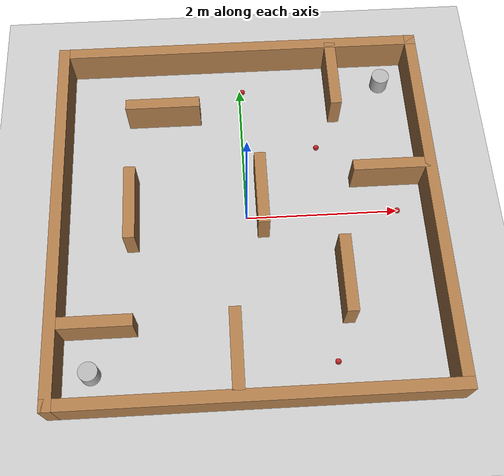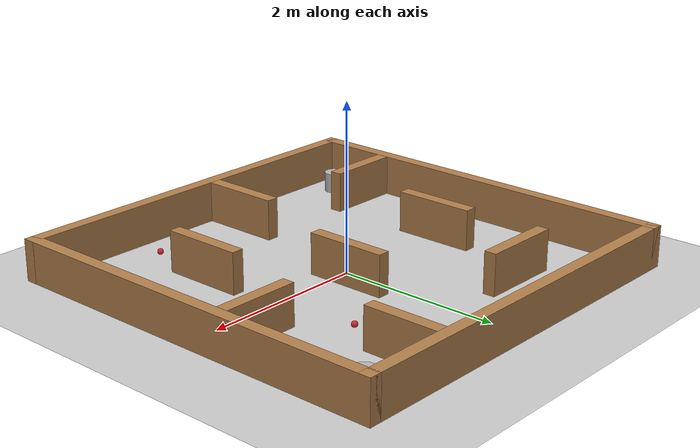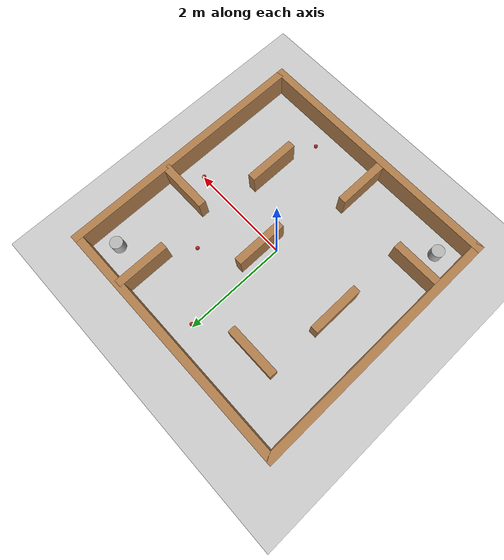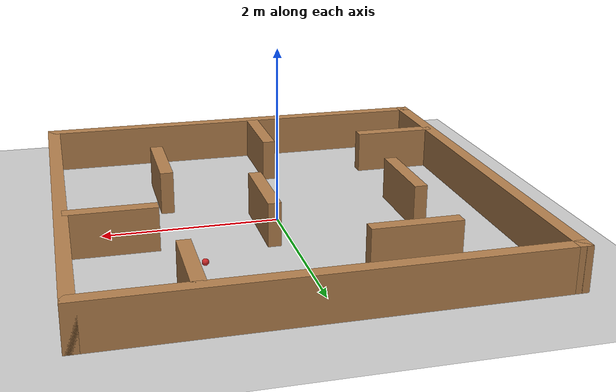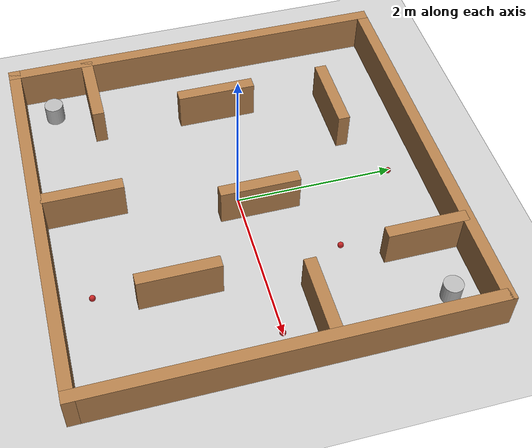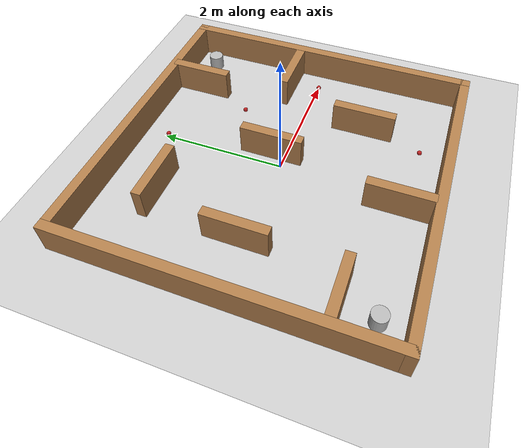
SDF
<sdf version="1.7">
 <world name="default">
  <light name="sun" type="directional">
   <pose>0 0 10 0 -0 0</pose>
   <diffuse>0.8 0.8 0.8 1</diffuse>
   <specular>0.1 0.1 0.1 1</specular>
   <attenuation>
    <range>1000</range>
    <constant>0.9</constant>
    <linear>0.01</linear>
    <quadratic>0.001</quadratic>
   </attenuation>
   <direction>-0.5 0.5 -1</direction>
   <spot><inner_angle>0</inner_angle><outer_angle>0</outer_angle><falloff>0</falloff></spot>
  </light>
  <model name="ground_plane">
   <static>1</static>
   <link name="link">
    <collision name="collision">
     <geometry><plane><normal>0 0 1</normal><size>100 100</size></plane></geometry>
     <surface><friction><ode><mu>100</mu><mu2>50</mu2></ode></friction></surface>
    </collision>
    <visual name="visual">
     <cast_shadows>0</cast_shadows>
     <geometry><plane><normal>0 0 1</normal><size>100 100</size></plane></geometry>
     <material>
      <script><uri>file://media/materials/scripts/gazebo.material</uri><name>Gazebo/Grey</name></script>
     </material>
    </visual>
   </link>
  </model>
  <physics name="default_physics" default="0" type="ode">
   <real_time_update_rate>1000</real_time_update_rate>
   <max_step_size>0.001</max_step_size>
   <real_time_factor>1</real_time_factor>
   <ode>
    <solver>
     <type>quick</type>
     <iters>150</iters>
     <precon_iters>0</precon_iters>
     <sor>1.4</sor>
     <use_dynamic_moi_rescaling>1</use_dynamic_moi_rescaling>
    </solver>
    <constraints>
     <cfm>1e-05</cfm>
     <erp>0.2</erp>
     <contact_max_correcting_vel>2000</contact_max_correcting_vel>
     <contact_surface_layer>0.01</contact_surface_layer>
    </constraints>
   </ode>
  </physics>
  <model name="turtlebot3_plaza">
   <link name="Wall_0">
    <collision name="Wall_0_Collision">
     <geometry><box><size>5 0.15 0.5</size></box></geometry>
     <pose>0 0 0.25 0 -0 0</pose>
    </collision>
    <visual name="Wall_0_Visual">
     <pose>0 0 0.25 0 -0 0</pose>
     <geometry><box><size>5 0.15 0.5</size></box></geometry>
     <material>
      <script><uri>file://media/materials/scripts/gazebo.material</uri><name>Gazebo/Wood</name></script>
      <ambient>1 1 1 1</ambient>
     </material>
    </visual>
    <pose>-2.425 0 0 0 -0 1.5708</pose>
   </link>
   <link name="Wall_11">
    <collision name="Wall_11_Collision">
     <geometry><box><size>1 0.15 0.5</size></box></geometry>
     <pose>0 0 0.25 0 -0 0</pose>
    </collision>
    <visual name="Wall_11_Visual">
     <pose>0 0 0.25 0 -0 0</pose>
     <geometry><box><size>1 0.15 0.5</size></box></geometry>
     <material>
      <script><uri>file://media/materials/scripts/gazebo.material</uri><name>Gazebo/Wood</name></script>
      <ambient>1 1 1 1</ambient>
     </material>
    </visual>
    <pose>-1.937 -1.467 0 0 -0 0</pose>
   </link>
   <link name="Wall_13">
    <collision name="Wall_13_Collision">
     <geometry><box><size>1 0.15 0.5</size></box></geometry>
     <pose>0 0 0.25 0 -0 0</pose>
    </collision>
    <visual name="Wall_13_Visual">
     <pose>0 0 0.25 0 -0 0</pose>
     <geometry><box><size>1 0.15 0.5</size></box></geometry>
     <material>
      <script><uri>file://media/materials/scripts/gazebo.material</uri><name>Gazebo/Wood</name></script>
      <ambient>1 1 1 1</ambient>
     </material>
    </visual>
    <pose>-0.22 -1.866 0 0 0 -1.5708</pose>
   </link>
   <link name="Wall_15">
    <collision name="Wall_15_Collision">
     <geometry><box><size>1 0.15 0.5</size></box></geometry>
     <pose>0 0 0.25 0 -0 0</pose>
    </collision>
    <visual name="Wall_15_Visual">
     <pose>0 0 0.25 0 -0 0</pose>
     <geometry><box><size>1 0.15 0.5</size></box></geometry>
     <material>
      <script><uri>file://media/materials/scripts/gazebo.material</uri><name>Gazebo/Wood</name></script>
      <ambient>1 1 1 1</ambient>
     </material>
    </visual>
    <pose>1.195 -1.002 0 0 -0 1.5708</pose>
   </link>
   <link name="Wall_17">
    <collision name="Wall_17_Collision">
     <geometry><box><size>1 0.15 0.5</size></box></geometry>
     <pose>0 0 0.25 0 -0 0</pose>
    </collision>
    <visual name="Wall_17_Visual">
     <pose>0 0 0.25 0 -0 0</pose>
     <geometry><box><size>1 0.15 0.5</size></box></geometry>
     <material>
      <script><uri>file://media/materials/scripts/gazebo.material</uri><name>Gazebo/Wood</name></script>
      <ambient>1 1 1 1</ambient>
     </material>
    </visual>
    <pose>1.288 1.93 0 0 0 -1.5708</pose>
   </link>
   <link name="Wall_19">
    <collision name="Wall_19_Collision">
     <geometry><box><size>1 0.15 0.5</size></box></geometry>
     <pose>0 0 0.25 0 -0 0</pose>
    </collision>
    <visual name="Wall_19_Visual">
     <pose>0 0 0.25 0 -0 0</pose>
     <geometry><box><size>1 0.15 0.5</size></box></geometry>
     <material>
      <script><uri>file://media/materials/scripts/gazebo.material</uri><name>Gazebo/Wood</name></script>
      <ambient>1 1 1 1</ambient>
     </material>
    </visual>
    <pose>1.91128 0.4632 0 0 -0 0</pose>
   </link>
   <link name="Wall_2">
    <collision name="Wall_2_Collision">
     <geometry><box><size>5 0.15 0.5</size></box></geometry>
     <pose>0 0 0.25 0 -0 0</pose>
    </collision>
    <visual name="Wall_2_Visual">
     <pose>0 0 0.25 0 -0 0</pose>
     <geometry><box><size>5 0.15 0.5</size></box></geometry>
     <material>
      <script><uri>file://media/materials/scripts/gazebo.material</uri><name>Gazebo/Wood</name></script>
      <ambient>1 1 1 1</ambient>
     </material>
    </visual>
    <pose>0 2.425 0 0 -0 0</pose>
   </link>
   <link name="Wall_21">
    <collision name="Wall_21_Collision">
     <geometry><box><size>1 0.15 0.5</size></box></geometry>
     <pose>0 0 0.25 0 -0 0</pose>
    </collision>
    <visual name="Wall_21_Visual">
     <pose>0 0 0.25 0 -0 0</pose>
     <geometry><box><size>1 0.15 0.5</size></box></geometry>
     <material>
      <script><uri>file://media/materials/scripts/gazebo.material</uri><name>Gazebo/Wood</name></script>
      <ambient>1 1 1 1</ambient>
     </material>
    </visual>
    <pose>0.204 0.215 0 0 0 -1.5708</pose>
   </link>
   <link name="Wall_3">
    <collision name="Wall_3_Collision">
     <geometry><box><size>5 0.15 0.5</size></box></geometry>
     <pose>0 0 0.25 0 -0 0</pose>
    </collision>
    <visual name="Wall_3_Visual">
     <pose>0 0 0.25 0 -0 0</pose>
     <geometry><box><size>5 0.15 0.5</size></box></geometry>
     <material>
      <script><uri>file://media/materials/scripts/gazebo.material</uri><name>Gazebo/Wood</name></script>
      <ambient>1 1 1 1</ambient>
     </material>
    </visual>
    <pose>2.425 0 0 0 0 -1.5708</pose>
   </link>
   <link name="Wall_4">
    <collision name="Wall_4_Collision">
     <geometry><box><size>5 0.15 0.5</size></box></geometry>
     <pose>0 0 0.25 0 -0 0</pose>
    </collision>
    <visual name="Wall_4_Visual">
     <pose>0 0 0.25 0 -0 0</pose>
     <geometry><box><size>5 0.15 0.5</size></box></geometry>
     <material>
      <script><uri>file://media/materials/scripts/gazebo.material</uri><name>Gazebo/Wood</name></script>
      <ambient>1 1 1 1</ambient>
     </material>
    </visual>
    <pose>0 -2.425 0 0 -0 3.14159</pose>
   </link>
   <link name="Wall_7">
    <collision name="Wall_7_Collision">
     <geometry><box><size>1 0.15 0.5</size></box></geometry>
     <pose>0 0 0.25 0 -0 0</pose>
    </collision>
    <visual name="Wall_7_Visual">
     <pose>0 0 0.25 0 -0 0</pose>
     <geometry><box><size>1 0.15 0.5</size></box></geometry>
     <material>
      <script><uri>file://media/materials/scripts/gazebo.material</uri><name>Gazebo/Wood</name></script>
      <ambient>1 1 1 1</ambient>
     </material>
    </visual>
    <pose>-1.064 1.548 0 0 -0 0</pose>
   </link>
   <link name="Wall_9">
    <collision name="Wall_9_Collision">
     <geometry><box><size>1 0.15 0.5</size></box></geometry>
     <pose>0 0 0.25 0 -0 0</pose>
    </collision>
    <visual name="Wall_9_Visual">
     <pose>0 0 0.25 0 -0 0</pose>
     <geometry><box><size>1 0.15 0.5</size></box></geometry>
     <material>
      <script><uri>file://media/materials/scripts/gazebo.material</uri><name>Gazebo/Wood</name></script>
      <ambient>1 1 1 1</ambient>
     </material>
    </visual>
    <pose>-1.502 0.092 0 0 0 -1.5708</pose>
   </link>
   <static>1</static>
  </model>
  <model name="obstacle_1">
   <pose>2 2 0.124999 -0 -0 -0</pose>
   <link name="link">
    <collision name="collision">
     <geometry><cylinder><radius>0.12</radius><length>0.25</length></cylinder></geometry>
    </collision>
    <visual name="visual">
     <geometry><cylinder><radius>0.12</radius><length>0.25</length></cylinder></geometry>
    </visual>
    <inertial>
     <inertia><ixx>1</ixx><ixy>0</ixy><ixz>0</ixz><iyy>1</iyy><iyz>0</iyz><izz>1</izz></inertia>
     <mass>1</mass>
    </inertial>
   </link>
  </model>
  <model name="obstacle_2">
   <pose>-2 -2 0.124999 -0 -0 -0</pose>
   <link name="link">
    <collision name="collision">
     <geometry><cylinder><radius>0.12</radius><length>0.25</length></cylinder></geometry>
    </collision>
    <visual name="visual">
     <geometry><cylinder><radius>0.12</radius><length>0.25</length></cylinder></geometry>
    </visual>
    <inertial>
     <inertia><ixx>1</ixx><ixy>0</ixy><ixz>0</ixz><iyy>1</iyy><iyz>0</iyz><izz>1</izz></inertia>
     <mass>1</mass>
    </inertial>
   </link>
   <plugin name="obstacle_2" filename="libobstacle_2.so"/>
  </model>
  <scene><ambient>0.4 0.4 0.4 1</ambient><background>0.7 0.7 0.7 1</background><shadows>1</shadows></scene>
  <gravity>0 0 -9.8</gravity>
  <magnetic_field>6e-06 2.3e-05 -4.2e-05</magnetic_field>
  <atmosphere type="adiabatic"/>
  <spherical_coordinates>
   <surface_model>EARTH_WGS84</surface_model>
   <latitude_deg>0</latitude_deg>
   <longitude_deg>0</longitude_deg>
   <elevation>0</elevation>
   <heading_deg>0</heading_deg>
  </spherical_coordinates>
  <model name="cricket_ball">
   <link name="link">
    <pose>0 0 0.0375 0 -0 0</pose>
    <inertial>
     <mass>0.1467</mass>
     <inertia>
      <ixx>8.25187e-05</ixx>
      <ixy>0</ixy>
      <ixz>0</ixz>
      <iyy>8.25187e-05</iyy>
      <iyz>0</iyz>
      <izz>8.25187e-05</izz>
     </inertia>
    </inertial>
    <collision name="collision">
     <geometry><sphere><radius>0.0375</radius></sphere></geometry>
     <surface>
      <contact>
       <poissons_ratio>0.347</poissons_ratio>
       <elastic_modulus>8.8e+09</elastic_modulus>
       <ode><kp>100000</kp><kd>100</kd><max_vel>100</max_vel><min_depth>0.001</min_depth></ode>
      </contact>
      <friction>
       <torsional>
        <coefficient>1</coefficient>
        <use_patch_radius>0</use_patch_radius>
        <surface_radius>0.01</surface_radius>
       </torsional>
      </friction>
     </surface>
    </collision>
    <visual name="visual">
     <geometry><sphere><radius>0.0375</radius></sphere></geometry>
     <material>
      <script><uri>file://media/materials/scripts/gazebo.material</uri><name>Gazebo/Red</name></script>
     </material>
    </visual>
    <velocity_decay><linear>0</linear><angular>0.005</angular></velocity_decay>
   </link>
   <pose>1.00849 -1.98944 -0.001014 0 -0 0</pose>
  </model>
  <model name="cricket_ball_0">
   <link name="link">
    <pose>0 0 0.0375 0 -0 0</pose>
    <inertial>
     <mass>0.1467</mass>
     <inertia>
      <ixx>8.25187e-05</ixx>
      <ixy>0</ixy>
      <ixz>0</ixz>
      <iyy>8.25187e-05</iyy>
      <iyz>0</iyz>
      <izz>8.25187e-05</izz>
     </inertia>
    </inertial>
    <collision name="collision">
     <geometry><sphere><radius>0.0375</radius></sphere></geometry>
     <surface>
      <contact>
       <poissons_ratio>0.347</poissons_ratio>
       <elastic_modulus>8.8e+09</elastic_modulus>
       <ode><kp>100000</kp><kd>100</kd><max_vel>100</max_vel><min_depth>0.001</min_depth></ode>
      </contact>
      <friction>
       <torsional>
        <coefficient>1</coefficient>
        <use_patch_radius>0</use_patch_radius>
        <surface_radius>0.01</surface_radius>
       </torsional>
      </friction>
     </surface>
    </collision>
    <visual name="visual">
     <geometry><sphere><radius>0.0375</radius></sphere></geometry>
     <material>
      <script><uri>file://media/materials/scripts/gazebo.material</uri><name>Gazebo/Red</name></script>
     </material>
    </visual>
    <velocity_decay><linear>0</linear><angular>0.005</angular></velocity_decay>
   </link>
   <pose>1.00913 1.0048 -0.001014 0 -0 0</pose>
  </model>
  <model name="cricket_ball_1">
   <link name="link">
    <pose>0 0 0.0375 0 -0 0</pose>
    <inertial>
     <mass>0.1467</mass>
     <inertia>
      <ixx>8.25187e-05</ixx>
      <ixy>0</ixy>
      <ixz>0</ixz>
      <iyy>8.25187e-05</iyy>
      <iyz>0</iyz>
      <izz>8.25187e-05</izz>
     </inertia>
    </inertial>
    <collision name="collision">
     <geometry><sphere><radius>0.0375</radius></sphere></geometry>
     <surface>
      <contact>
       <poissons_ratio>0.347</poissons_ratio>
       <elastic_modulus>8.8e+09</elastic_modulus>
       <ode><kp>100000</kp><kd>100</kd><max_vel>100</max_vel><min_depth>0.001</min_depth></ode>
      </contact>
      <friction>
       <torsional>
        <coefficient>1</coefficient>
        <use_patch_radius>0</use_patch_radius>
        <surface_radius>0.01</surface_radius>
       </torsional>
      </friction>
     </surface>
    </collision>
    <visual name="visual">
     <geometry><sphere><radius>0.0375</radius></sphere></geometry>
     <material>
      <script><uri>file://media/materials/scripts/gazebo.material</uri><name>Gazebo/Red</name></script>
     </material>
    </visual>
    <velocity_decay><linear>0</linear><angular>0.005</angular></velocity_decay>
   </link>
   <pose>0.035821 1.96876 -0.001014 0 -0 0</pose>
  </model>
  <model name="cricket_ball_2">
   <link name="link">
    <pose>0 0 0.0375 0 -0 0</pose>
    <inertial>
     <mass>0.1467</mass>
     <inertia>
      <ixx>8.25187e-05</ixx>
      <ixy>0</ixy>
      <ixz>0</ixz>
      <iyy>8.25187e-05</iyy>
      <iyz>0</iyz>
      <izz>8.25187e-05</izz>
     </inertia>
    </inertial>
    <collision name="collision">
     <geometry><sphere><radius>0.0375</radius></sphere></geometry>
     <surface>
      <contact>
       <poissons_ratio>0.347</poissons_ratio>
       <elastic_modulus>8.8e+09</elastic_modulus>
       <ode><kp>100000</kp><kd>100</kd><max_vel>100</max_vel><min_depth>0.001</min_depth></ode>
      </contact>
      <friction>
       <torsional>
        <coefficient>1</coefficient>
        <use_patch_radius>0</use_patch_radius>
        <surface_radius>0.01</surface_radius>
       </torsional>
      </friction>
     </surface>
    </collision>
    <visual name="visual">
     <geometry><sphere><radius>0.0375</radius></sphere></geometry>
     <material>
      <script><uri>file://media/materials/scripts/gazebo.material</uri><name>Gazebo/Red</name></script>
     </material>
    </visual>
    <velocity_decay><linear>0</linear><angular>0.005</angular></velocity_decay>
   </link>
   <pose>1.99976 -0.00864 -0.001014 0 -0 0</pose>
  </model>
 </world>
</sdf>
